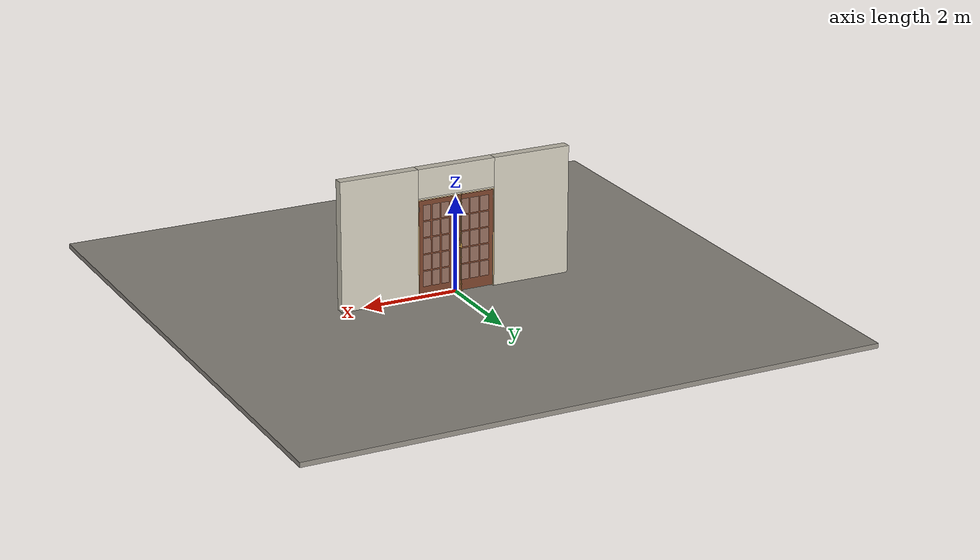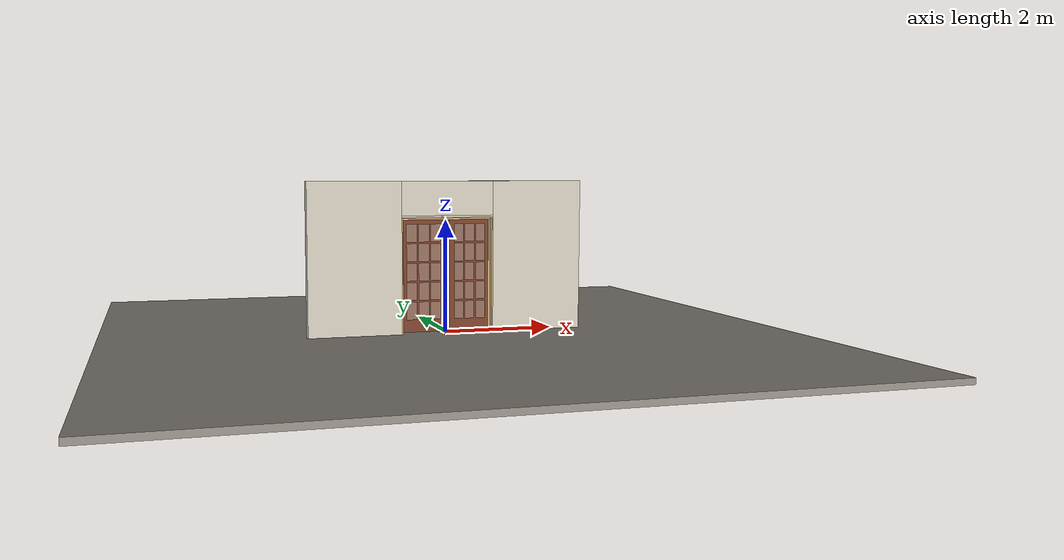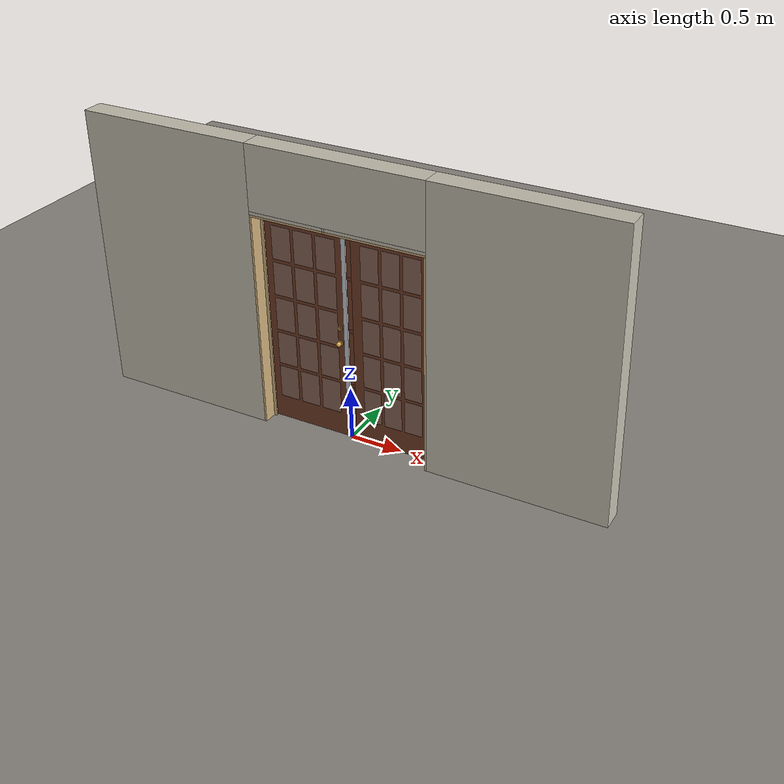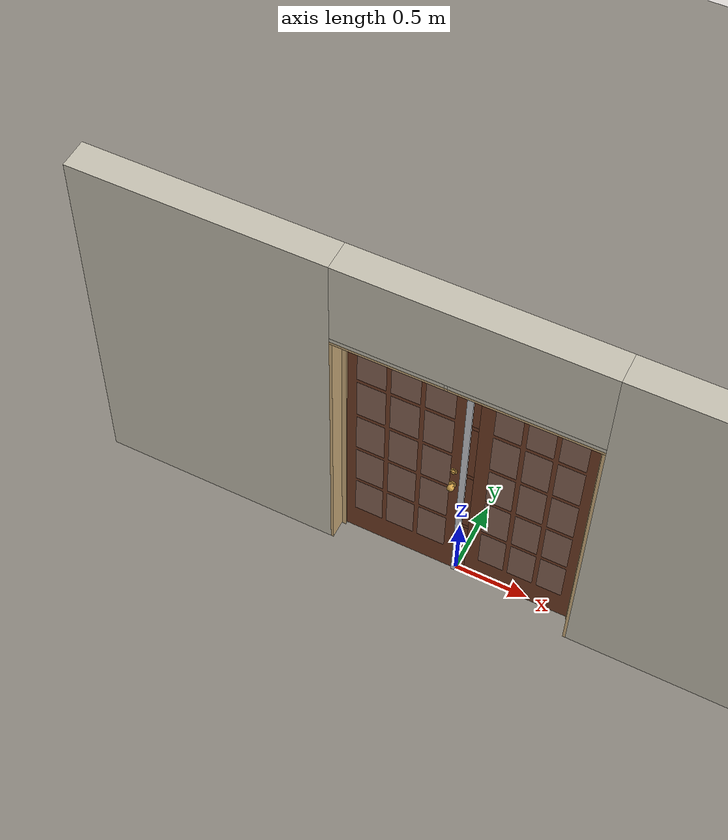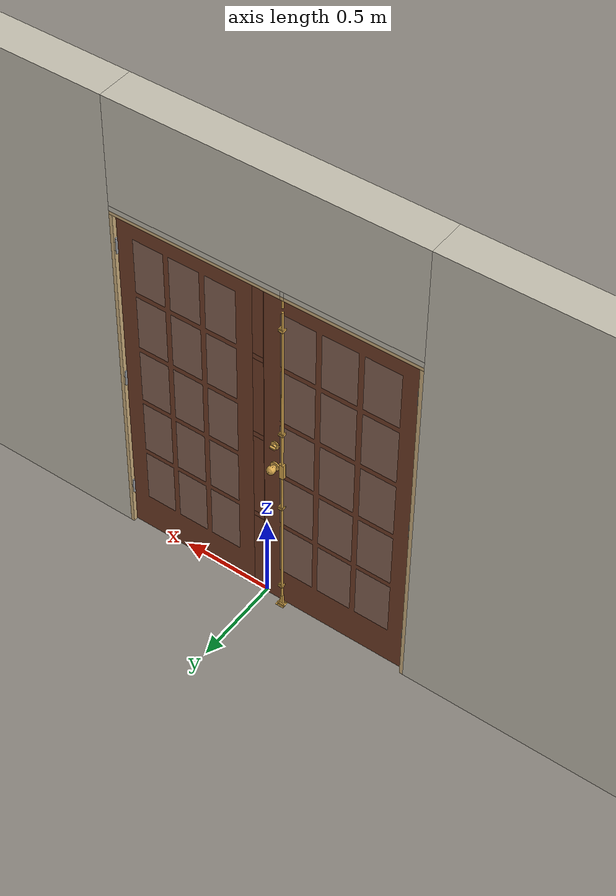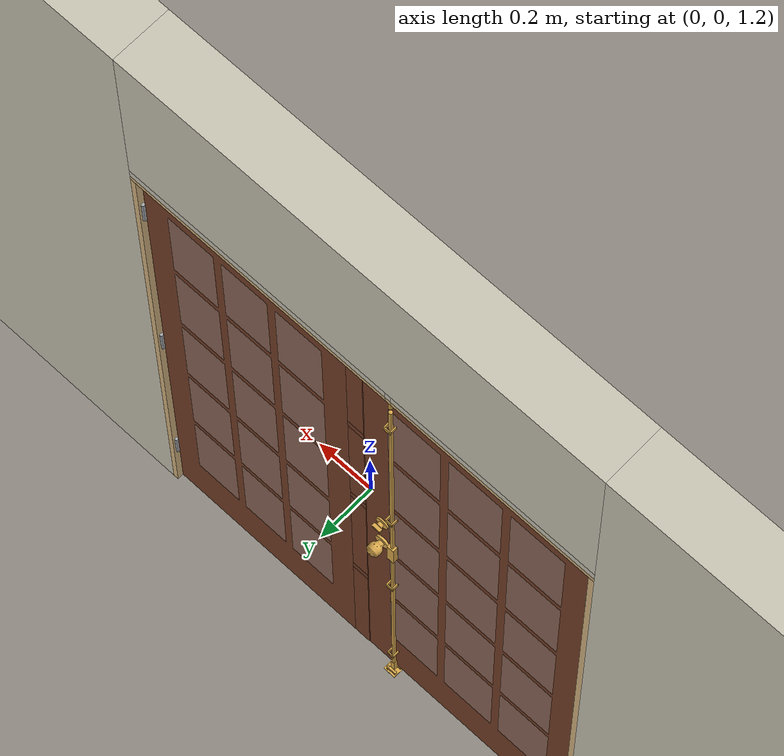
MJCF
<?xml version="1.0" ?>
<mujoco model="db0846_swing_double_full">
  <compiler angle="radian" meshdir="../../hardware" texturedir="../../textures" autolimits="true" inertiafromgeom="false"/>
  <option timestep="0.002" integrator="implicitfast" cone="elliptic" impratio="10" noslip_iterations="3">
    <flag multiccd="enable"/>
  </option>
  <size memory="16M"/>
  <default>
    <geom condim="4" solref="0.005 1" solimp="0.95 0.99 0.001"/>
    <joint solreflimit="0.005 1" solimplimit="0.95 0.99 0.001"/>
    <tendon solreflimit="0.005 1"/>
    <equality solref="0.002 1"/>
  </default>
  <visual>
    <headlight ambient="0.4 0.4 0.4" diffuse="0.7 0.7 0.7" specular="0.2 0.2 0.2"/>
    <quality shadowsize="4096"/>
    <map znear="0.01" zfar="60"/>
  </visual>
  <asset>
    <mesh name="cyl_face_e9e5036966" file="cyl_face_e9e5036966.obj"/>
    <mesh name="hinge_2af0f4d6ca" file="hinge_2af0f4d6ca.obj"/>
    <mesh name="hinge_jamb_c0c0a62ada" file="hinge_jamb_c0c0a62ada.obj"/>
    <mesh name="knob_9525440cc3" file="knob_9525440cc3.obj"/>
    <mesh name="thumbturn_eb5c9899a3" file="thumbturn_eb5c9899a3.obj"/>
    <material name="mat_floor" rgba="0.55 0.53 0.5 1" specular="0.2" shininess="0.15" reflectance="0"/>
    <material name="mat_wall" rgba="0.78 0.76 0.7 1" specular="0.2" shininess="0.1" reflectance="0"/>
    <material name="mat_leaf_a" rgba="0.45 0.24 0.15 1" specular="0.2" shininess="0.55" reflectance="0"/>
    <material name="mat_glass" rgba="0.85 0.92 0.95 0.25" specular="0.2" shininess="0.95" reflectance="0.1"/>
    <material name="mat_hinge" rgba="0.65 0.66 0.68 1" specular="0.74" shininess="0.5" reflectance="0.36"/>
    <material name="mat_op_brass" rgba="0.85 0.66 0.3 1" specular="0.8" shininess="0.75" reflectance="0.4"/>
    <material name="mat_trim" rgba="0.85 0.66 0.3 1" specular="0.8" shininess="0.75" reflectance="0.4"/>
    <material name="mat_deadbolt" rgba="0.85 0.66 0.3 1" specular="0.8" shininess="0.75" reflectance="0.4"/>
    <material name="mat_leaf_b" rgba="0.45 0.24 0.15 1" specular="0.2" shininess="0.55" reflectance="0"/>
    <material name="mat_frame" rgba="0.82 0.7 0.5 1" specular="0.2" shininess="0.45" reflectance="0"/>
    <material name="mat_astragal" rgba="0.8 0.81 0.83 1" specular="0.8" shininess="0.6" reflectance="0.4"/>
    <texture name="skybox" type="skybox" builtin="gradient" rgb1="0.6 0.7 0.85" rgb2="0.9 0.92 0.95" width="256" height="256"/>
  </asset>
  <worldbody>
    <light name="sun" pos="1.5 -2.5 4" dir="-0.3 0.5 -0.8" directional="true" diffuse="0.8 0.8 0.8" specular="0.3 0.3 0.3" castshadow="true"/>
    <light name="fill" pos="-1.5 2.5 3" dir="0.3 -0.5 -0.7" directional="true" diffuse="0.35 0.35 0.4" castshadow="false"/>
    <camera name="robot_view" pos="0 -2.600187 1.734312" xyaxes="1 0 0 0 0.26963 0.962964" fovy="52"/>
    <camera name="far_view" pos="0 2.484187 1.734312" xyaxes="-1 0 0 0 -0.26963 0.962964" fovy="52"/>
    <camera name="iso" pos="-1.932062 -2.193437 2.141063" xyaxes="0.741536 -0.670913 0 0.242917 0.268487 0.932151" fovy="46"/>
    <camera name="detail_handle" pos="0.1135 -0.857 1.245" xyaxes="0.97561 0.219512 0 -0.070934 0.315262 0.94635" fovy="38"/>
    <geom name="floor" type="box" size="6 6 0.05" pos="0 0 -0.05" material="mat_floor" group="0" contype="1" conaffinity="1" friction="0.8 0.005 0.0001" density="2400"/>
    <geom name="wall_left" type="box" size="0.83175 0.1 1.35" pos="-1.66825 -0.058 1.35" material="mat_wall" group="0" contype="1" conaffinity="1" friction="0.6 0.005 0.0001" density="800"/>
    <geom name="wall_right" type="box" size="0.83175 0.1 1.35" pos="1.66825 -0.058 1.35" material="mat_wall" group="0" contype="1" conaffinity="1" friction="0.6 0.005 0.0001" density="800"/>
    <geom name="wall_header" type="box" size="0.8365 0.1 0.303" pos="0 -0.058 2.397" material="mat_wall" group="0" contype="1" conaffinity="1" friction="0.6 0.005 0.0001" density="800"/>
    <geom name="hinge_0_jamb" type="mesh" mesh="hinge_jamb_c0c0a62ada" pos="-0.8145 0.029 0.266" quat="0 1 0 0" material="mat_hinge" group="1" contype="0" conaffinity="0" density="7850"/>
    <geom name="hinge_1_jamb" type="mesh" mesh="hinge_jamb_c0c0a62ada" pos="-0.8145 0.029 1.0285" quat="0 1 0 0" material="mat_hinge" group="1" contype="0" conaffinity="0" density="7850"/>
    <geom name="hinge_2_jamb" type="mesh" mesh="hinge_jamb_c0c0a62ada" pos="-0.8145 0.029 1.861" quat="0 1 0 0" material="mat_hinge" group="1" contype="0" conaffinity="0" density="7850"/>
    <geom name="leaf_a_cremone_floor_strike_plate" type="box" size="0.023 0.023 0.00075" pos="-0.1115 0.031 0.00075" material="mat_op_brass" group="0" contype="1" conaffinity="1" friction="0.6 0.005 0.0001" density="7850"/>
    <geom name="leaf_a_cremone_floor_strike_p" type="box" size="0.019 0.004 0.00575" pos="-0.1115 0.043 0.00725" material="mat_op_brass" group="0" contype="1" conaffinity="1" friction="0.6 0.005 0.0001" density="7850"/>
    <geom name="leaf_a_cremone_floor_strike_n" type="box" size="0.019 0.004 0.00575" pos="-0.1115 0.019 0.00725" material="mat_op_brass" group="0" contype="1" conaffinity="1" friction="0.6 0.005 0.0001" density="7850"/>
    <geom name="leaf_a_cremone_floor_strike_e" type="box" size="0.004 0.019 0.00575" pos="-0.0995 0.031 0.00725" material="mat_op_brass" group="0" contype="1" conaffinity="1" friction="0.6 0.005 0.0001" density="7850"/>
    <geom name="hinge_0_jamb_2" type="mesh" mesh="hinge_jamb_c0c0a62ada" pos="0.8145 0.029 0.259" quat="0 0 0 1" material="mat_hinge" group="1" contype="0" conaffinity="0" density="7850"/>
    <geom name="hinge_1_jamb_2" type="mesh" mesh="hinge_jamb_c0c0a62ada" pos="0.8145 0.029 1.025" quat="0 0 0 1" material="mat_hinge" group="1" contype="0" conaffinity="0" density="7850"/>
    <geom name="hinge_2_jamb_2" type="mesh" mesh="hinge_jamb_c0c0a62ada" pos="0.8145 0.029 1.861" quat="0 0 0 1" material="mat_hinge" group="1" contype="0" conaffinity="0" density="7850"/>
    <geom name="jamb_l" type="box" size="0.0095 0.1 1.0225" pos="-0.827 -0.058 1.0225" material="mat_frame" group="0" contype="1" conaffinity="1" friction="0.6 0.005 0.0001" density="300"/>
    <geom name="jamb_r" type="box" size="0.0095 0.1 1.0225" pos="0.827 -0.058 1.0225" material="mat_frame" group="0" contype="1" conaffinity="1" friction="0.6 0.005 0.0001" density="300"/>
    <geom name="jamb_head_pwall_-111_n" type="box" size="0.01 0.09075 0.0095" pos="-0.1115 -0.06725 2.0545" material="mat_frame" group="0" contype="1" conaffinity="1" friction="0.6 0.005 0.0001" density="300"/>
    <geom name="jamb_head_pwall_-111_p" type="box" size="0.01 0.00175 0.0095" pos="-0.1115 0.04025 2.0545" material="mat_frame" group="0" contype="1" conaffinity="1" friction="0.6 0.005 0.0001" density="300"/>
    <geom name="jamb_head_0" type="box" size="0.3575 0.1 0.0095" pos="-0.479 -0.058 2.0545" material="mat_frame" group="0" contype="1" conaffinity="1" friction="0.6 0.005 0.0001" density="300"/>
    <geom name="jamb_head_1" type="box" size="0.469 0.1 0.0095" pos="0.3675 -0.058 2.0545" material="mat_frame" group="0" contype="1" conaffinity="1" friction="0.6 0.005 0.0001" density="300"/>
    <geom name="head_stud_pwall_-111_n" type="box" size="0.01 0.09075 0.015" pos="-0.1115 -0.06725 2.079" material="mat_wall" group="0" contype="1" conaffinity="1" friction="0.6 0.005 0.0001" density="500"/>
    <geom name="head_stud_pwall_-111_p" type="box" size="0.01 0.00175 0.015" pos="-0.1115 0.04025 2.079" material="mat_wall" group="0" contype="1" conaffinity="1" friction="0.6 0.005 0.0001" density="500"/>
    <geom name="head_stud_pback_-111" type="box" size="0.01 0.0075 0.0115" pos="-0.1115 0.031 2.0825" material="mat_wall" group="0" contype="1" conaffinity="1" friction="0.6 0.005 0.0001" density="500"/>
    <geom name="head_stud_0" type="box" size="0.3575 0.1 0.015" pos="-0.479 -0.058 2.079" material="mat_wall" group="0" contype="1" conaffinity="1" friction="0.6 0.005 0.0001" density="500"/>
    <geom name="head_stud_1" type="box" size="0.469 0.1 0.015" pos="0.3675 -0.058 2.079" material="mat_wall" group="0" contype="1" conaffinity="1" friction="0.6 0.005 0.0001" density="500"/>
    <geom name="stop_l" type="box" size="0.015 0.006 1.0225" pos="-0.8025 -0.0285 1.0225" material="mat_frame" group="0" contype="1" conaffinity="1" friction="0.6 0.005 0.0001" density="300"/>
    <geom name="stop_r" type="box" size="0.015 0.006 1.0225" pos="0.8025 -0.0285 1.0225" material="mat_frame" group="0" contype="1" conaffinity="1" friction="0.6 0.005 0.0001" density="300"/>
    <geom name="stop_head" type="box" size="0.8175 0.006 0.015" pos="0 -0.0285 2.03" material="mat_frame" group="0" contype="1" conaffinity="1" friction="0.6 0.005 0.0001" density="300"/>
    <site name="approach_point" pos="0 -1.5 0" quat="1 0 0 0" size="0.05" rgba="0.2 0.9 0.2 0.5" group="4"/>
    <site name="goal_point" pos="0 1.5 0" quat="1 0 0 0" size="0.05" rgba="0.2 0.9 0.2 0.5" group="4"/>
    <site name="door_plane_center" pos="0 0 1.0225" quat="1 0 0 0" size="0.02" rgba="0.2 0.9 0.2 0.5" group="4"/>
    <site name="approach_point_2" pos="0 -1.5 0" quat="1 0 0 0" size="0.05" rgba="0.2 0.9 0.2 0.5" group="4"/>
    <site name="goal_point_2" pos="0 1.5 0" quat="1 0 0 0" size="0.05" rgba="0.2 0.9 0.2 0.5" group="4"/>
    <site name="door_plane_center_2" pos="0 0 1.0225" quat="1 0 0 0" size="0.02" rgba="0.2 0.9 0.2 0.5" group="4"/>
    <site name="approach_point_3" pos="0 -1.5 0" quat="1 0 0 0" size="0.05" rgba="0.2 0.9 0.2 0.5" group="4"/>
    <site name="goal_point_3" pos="0 1.5 0" quat="1 0 0 0" size="0.05" rgba="0.2 0.9 0.2 0.5" group="4"/>
    <site name="door_plane_center_3" pos="0 0 1.0225" quat="1 0 0 0" size="0.02" rgba="0.2 0.9 0.2 0.5" group="4"/>
    <body name="leaf_a" pos="-0.8175 0 0">
      <inertial pos="0.43634 0.003155 1.026833" mass="35.235615" quat="-0.498258 0.503182 -0.496683 -0.501849" diaginertia="2.177072154 11.810808359 13.971434069"/>
      <joint name="leaf_a_hinge" type="hinge" axis="0 0 1" pos="0.003 0.029 0" limited="true" range="0 1.919862" solreflimit="0.02 1" damping="0.210326" frictionloss="7.292966" armature="0.02"/>
      <geom name="leaf_a_slab" type="box" size="0.4065 0.022 1.0125" pos="0.4095 0 1.0285" material="mat_leaf_a" group="0" contype="1" conaffinity="1" friction="0.35 0.005 0.0001" density="1"/>
      <geom name="leaf_a_glass_0" type="box" size="0.0955 0.0228 0.1581" pos="0.1885 0 0.39685" material="mat_glass" group="1" contype="0" conaffinity="0" density="1"/>
      <geom name="leaf_a_glass_1" type="box" size="0.0955 0.0228 0.1581" pos="0.4095 0 0.39685" material="mat_glass" group="1" contype="0" conaffinity="0" density="1"/>
      <geom name="leaf_a_glass_2" type="box" size="0.0955 0.0228 0.1581" pos="0.6305 0 0.39685" material="mat_glass" group="1" contype="0" conaffinity="0" density="1"/>
      <geom name="leaf_a_glass_3" type="box" size="0.0955 0.0228 0.1581" pos="0.1885 0 0.74305" material="mat_glass" group="1" contype="0" conaffinity="0" density="1"/>
      <geom name="leaf_a_glass_4" type="box" size="0.0955 0.0228 0.1581" pos="0.4095 0 0.74305" material="mat_glass" group="1" contype="0" conaffinity="0" density="1"/>
      <geom name="leaf_a_glass_5" type="box" size="0.0955 0.0228 0.1581" pos="0.6305 0 0.74305" material="mat_glass" group="1" contype="0" conaffinity="0" density="1"/>
      <geom name="leaf_a_glass_6" type="box" size="0.0955 0.0228 0.1581" pos="0.1885 0 1.08925" material="mat_glass" group="1" contype="0" conaffinity="0" density="1"/>
      <geom name="leaf_a_glass_7" type="box" size="0.0955 0.0228 0.1581" pos="0.4095 0 1.08925" material="mat_glass" group="1" contype="0" conaffinity="0" density="1"/>
      <geom name="leaf_a_glass_8" type="box" size="0.0955 0.0228 0.1581" pos="0.6305 0 1.08925" material="mat_glass" group="1" contype="0" conaffinity="0" density="1"/>
      <geom name="leaf_a_glass_9" type="box" size="0.0955 0.0228 0.1581" pos="0.1885 0 1.43545" material="mat_glass" group="1" contype="0" conaffinity="0" density="1"/>
      <geom name="leaf_a_glass_10" type="box" size="0.0955 0.0228 0.1581" pos="0.4095 0 1.43545" material="mat_glass" group="1" contype="0" conaffinity="0" density="1"/>
      <geom name="leaf_a_glass_11" type="box" size="0.0955 0.0228 0.1581" pos="0.6305 0 1.43545" material="mat_glass" group="1" contype="0" conaffinity="0" density="1"/>
      <geom name="leaf_a_glass_12" type="box" size="0.0955 0.0228 0.1581" pos="0.1885 0 1.78165" material="mat_glass" group="1" contype="0" conaffinity="0" density="1"/>
      <geom name="leaf_a_glass_13" type="box" size="0.0955 0.0228 0.1581" pos="0.4095 0 1.78165" material="mat_glass" group="1" contype="0" conaffinity="0" density="1"/>
      <geom name="leaf_a_glass_14" type="box" size="0.0955 0.0228 0.1581" pos="0.6305 0 1.78165" material="mat_glass" group="1" contype="0" conaffinity="0" density="1"/>
      <geom name="hinge_0" type="mesh" mesh="hinge_2af0f4d6ca" pos="0.003 0.029 0.266" quat="0 1 0 0" material="mat_hinge" group="1" contype="0" conaffinity="0" density="7850"/>
      <geom name="hinge_1" type="mesh" mesh="hinge_2af0f4d6ca" pos="0.003 0.029 1.0285" quat="0 1 0 0" material="mat_hinge" group="1" contype="0" conaffinity="0" density="7850"/>
      <geom name="hinge_2" type="mesh" mesh="hinge_2af0f4d6ca" pos="0.003 0.029 1.861" quat="0 1 0 0" material="mat_hinge" group="1" contype="0" conaffinity="0" density="7850"/>
      <geom name="leaf_a_cremone_rod_up" type="cylinder" size="0.006 0.4805" pos="0.706 0.031 1.4855" material="mat_op_brass" group="1" contype="0" conaffinity="0" density="7850"/>
      <geom name="leaf_a_cremone_rod_down" type="cylinder" size="0.006 0.4395" pos="0.706 0.031 0.4855" material="mat_op_brass" group="1" contype="0" conaffinity="0" density="7850"/>
      <geom name="leaf_a_cremone_gearbox" type="box" size="0.012 0.01 0.045" pos="0.706 0.031 0.965" material="mat_op_brass" group="1" contype="0" conaffinity="0" density="7850"/>
      <geom name="leaf_a_cremone_guide_0_leg_n" type="box" size="0.007 0.002 0.0125" pos="0.695 0.0345 1.215" quat="-0.5 0.5 0.5 0.5" material="mat_op_brass" group="1" contype="0" conaffinity="0" density="7800"/>
      <geom name="leaf_a_cremone_guide_0_leg_p" type="box" size="0.007 0.002 0.0125" pos="0.717 0.0345 1.215" quat="-0.5 0.5 0.5 0.5" material="mat_op_brass" group="1" contype="0" conaffinity="0" density="7800"/>
      <geom name="leaf_a_cremone_guide_0_bridge" type="box" size="0.007 0.013 0.002" pos="0.706 0.045 1.215" quat="-0.5 0.5 0.5 0.5" material="mat_op_brass" group="1" contype="0" conaffinity="0" density="7800"/>
      <geom name="leaf_a_cremone_guide_1_leg_n" type="box" size="0.007 0.002 0.0125" pos="0.695 0.0345 1.866" quat="-0.5 0.5 0.5 0.5" material="mat_op_brass" group="1" contype="0" conaffinity="0" density="7800"/>
      <geom name="leaf_a_cremone_guide_1_leg_p" type="box" size="0.007 0.002 0.0125" pos="0.717 0.0345 1.866" quat="-0.5 0.5 0.5 0.5" material="mat_op_brass" group="1" contype="0" conaffinity="0" density="7800"/>
      <geom name="leaf_a_cremone_guide_1_bridge" type="box" size="0.007 0.013 0.002" pos="0.706 0.045 1.866" quat="-0.5 0.5 0.5 0.5" material="mat_op_brass" group="1" contype="0" conaffinity="0" density="7800"/>
      <geom name="leaf_a_cremone_guide_2_leg_n" type="box" size="0.007 0.002 0.0125" pos="0.695 0.0345 0.715" quat="-0.5 0.5 0.5 0.5" material="mat_op_brass" group="1" contype="0" conaffinity="0" density="7800"/>
      <geom name="leaf_a_cremone_guide_2_leg_p" type="box" size="0.007 0.002 0.0125" pos="0.717 0.0345 0.715" quat="-0.5 0.5 0.5 0.5" material="mat_op_brass" group="1" contype="0" conaffinity="0" density="7800"/>
      <geom name="leaf_a_cremone_guide_2_bridge" type="box" size="0.007 0.013 0.002" pos="0.706 0.045 0.715" quat="-0.5 0.5 0.5 0.5" material="mat_op_brass" group="1" contype="0" conaffinity="0" density="7800"/>
      <geom name="leaf_a_cremone_guide_3_leg_n" type="box" size="0.007 0.002 0.0125" pos="0.695 0.0345 0.146" quat="-0.5 0.5 0.5 0.5" material="mat_op_brass" group="1" contype="0" conaffinity="0" density="7800"/>
      <geom name="leaf_a_cremone_guide_3_leg_p" type="box" size="0.007 0.002 0.0125" pos="0.717 0.0345 0.146" quat="-0.5 0.5 0.5 0.5" material="mat_op_brass" group="1" contype="0" conaffinity="0" density="7800"/>
      <geom name="leaf_a_cremone_guide_3_bridge" type="box" size="0.007 0.013 0.002" pos="0.706 0.045 0.146" quat="-0.5 0.5 0.5 0.5" material="mat_op_brass" group="1" contype="0" conaffinity="0" density="7800"/>
      <geom name="leaf_a_deadbolt_faceplate" type="box" size="0.0006 0.014 0.0245" pos="0.8154 0 1.105" material="mat_deadbolt" group="1" contype="0" conaffinity="0" density="8500"/>
      <geom name="leaf_a_deadbolt_cylinder_face" type="mesh" mesh="cyl_face_e9e5036966" pos="0.751 -0.022 1.105" quat="0.707107 0.707107 0 0" material="mat_deadbolt" group="1" contype="0" conaffinity="0" density="7100"/>
      <geom name="leaf_a_multipoint_upper_faceplate" type="box" size="0.0006 0.014 0.0245" pos="0.8154 0 1.605" material="mat_deadbolt" group="1" contype="0" conaffinity="0" density="8500"/>
      <geom name="leaf_a_multipoint_lower_faceplate" type="box" size="0.0006 0.014 0.0245" pos="0.8154 0 0.555" material="mat_deadbolt" group="1" contype="0" conaffinity="0" density="8500"/>
      <geom name="leaf_a_multipoint_strip" type="box" size="0.0004 0.01 0.9925" pos="0.8156 0 1.0285" material="mat_deadbolt" group="1" contype="0" conaffinity="0" density="8500"/>
      <site name="leaf_a_edge_mid" pos="0.816 0 1.0125" quat="1 0 0 0" size="0.02" rgba="0.2 0.9 0.2 0.5" group="4"/>
      <body name="leaf_a_handle" pos="0.751 0 0.965">
        <inertial pos="0 0 0" mass="0.732315" quat="0.5 0.5 0.5 0.5" diaginertia="0.000141246 0.002063101 0.002063101"/>
        <joint name="leaf_a_handle_hinge" type="hinge" axis="0 -1 0" limited="true" range="0 1.5708" damping="0.5" frictionloss="0.4" armature="0.01"/>
        <geom name="leaf_a_handle_spindle" type="cylinder" size="0.006 0.03" pos="0 0 0" quat="0.707107 -0.707107 0 0" material="mat_op_brass" group="1" contype="0" conaffinity="0" density="7850"/>
        <geom name="leaf_a_handle_cremone_knob_n" type="mesh" mesh="knob_9525440cc3" pos="0 -0.022 0" quat="0.707107 0.707107 0 0" material="mat_op_brass" group="1" contype="0" conaffinity="0" density="3000"/>
        <geom name="leaf_a_handle_cremone_col_n" type="sphere" size="0.022" pos="0 -0.057 0" material="mat_op_brass" group="0" contype="1" conaffinity="1" friction="0.6 0.005 0.0001" density="3000"/>
        <geom name="leaf_a_handle_cremone_knob_p" type="mesh" mesh="knob_9525440cc3" pos="0 0.022 0" quat="-0.707107 0.707107 0 0" material="mat_op_brass" group="1" contype="0" conaffinity="0" density="3000"/>
        <geom name="leaf_a_handle_cremone_col_p" type="sphere" size="0.022" pos="0 0.057 0" material="mat_op_brass" group="0" contype="1" conaffinity="1" friction="0.6 0.005 0.0001" density="3000"/>
        <site name="leaf_a_handle_grip_n" pos="0 -0.057 0" quat="1 0 0 0" size="0.012" rgba="0.2 0.9 0.2 0.5" group="4"/>
        <site name="leaf_a_handle_grip_p" pos="0 0.057 0" quat="1 0 0 0" size="0.012" rgba="0.2 0.9 0.2 0.5" group="4"/>
      </body>
      <body name="leaf_a_cremone_top_bolt" pos="0.706 0.031 2.041">
        <inertial pos="0 0 -0.016" mass="0.060371" quat="0.707107 0 0.707107 0" diaginertia="0.000001061 0.000023913 0.000023913"/>
        <joint name="leaf_a_cremone_top_bolt_slide" type="slide" axis="0 0 -1" limited="true" range="0 0.02" damping="2" frictionloss="0.5" armature="0.1"/>
        <geom name="leaf_a_cremone_top_bolt_geom" type="capsule" size="0.006 0.03" pos="0 0 -0.016" material="mat_op_brass" group="0" contype="1" conaffinity="1" friction="0.4 0.005 0.0001" density="7850"/>
      </body>
      <body name="leaf_a_cremone_bottom_bolt" pos="0.706 0.031 0.03">
        <inertial pos="0 0 0.004" mass="0.092316" quat="0.707107 0 0.707107 0" diaginertia="0.000003016 0.000029203 0.000029203"/>
        <joint name="leaf_a_cremone_bottom_bolt_slide" type="slide" axis="0 0 1" limited="true" range="0 0.026" damping="2" frictionloss="0.5" armature="0.1"/>
        <geom name="leaf_a_cremone_bottom_bolt_geom" type="box" size="0.007 0.007 0.03" pos="0 0 0.004" material="mat_op_brass" group="0" contype="1" conaffinity="1" friction="0.6 0.005 0.0001" density="7850"/>
      </body>
      <body name="leaf_a_deadbolt" pos="0.816 0 1.105">
        <inertial pos="-0.025 0 0" mass="0.17" quat="0 0 0.707107 0.707107" diaginertia="0.000012481 0.000039043 0.000044271"/>
        <joint name="leaf_a_deadbolt_slide" type="slide" axis="-1 0 0" limited="true" range="0 0.02" damping="5" frictionloss="1.5" armature="0.1" ref="0.02"/>
        <geom name="leaf_a_deadbolt_box" type="box" size="0.025 0.008 0.0125" pos="-0.025 0 0" material="mat_deadbolt" group="0" contype="1" conaffinity="1" friction="0.3 0.005 0.0001" density="8500"/>
      </body>
      <body name="leaf_a_deadbolt_thumbturn" pos="0.751 0.022 1.105">
        <inertial pos="0 0.012928 0" mass="0.178946" quat="0.707107 -0.000001 -0.000001 0.707107" diaginertia="0.000026045 0.000026215 0.000032438"/>
        <joint name="leaf_a_deadbolt_thumbturn_hinge" type="hinge" axis="0 -1 0" limited="true" range="0 1.5708" damping="0.05" frictionloss="0.3" armature="0.005" ref="1.5708"/>
        <geom name="leaf_a_deadbolt_thumbturn_mesh" type="mesh" mesh="thumbturn_eb5c9899a3" pos="0 0 0" quat="-0.499999 0.499999 0.500001 0.500001" material="mat_deadbolt" group="0" contype="1" conaffinity="1" friction="0.6 0.005 0.0001" density="7100"/>
        <geom name="leaf_a_deadbolt_thumbturn_col" type="box" size="0.006 0.012 0.016" pos="0 0.02 0" quat="0.707105 0 -0.707108 0" material="mat_deadbolt" group="3" contype="1" conaffinity="1" rgba="0.8 0.3 0.3 0.25" friction="0.6 0.005 0.0001" density="7100"/>
      </body>
      <body name="leaf_a_multipoint_upper" pos="0.816 0 1.605">
        <inertial pos="-0.025 0 0" mass="0.17" quat="0 0 0.707107 0.707107" diaginertia="0.000012481 0.000039043 0.000044271"/>
        <joint name="leaf_a_multipoint_upper_slide" type="slide" axis="-1 0 0" limited="true" range="0 0.02" damping="5" frictionloss="1.5" armature="0.1" ref="0.02"/>
        <geom name="leaf_a_multipoint_upper_box" type="box" size="0.025 0.008 0.0125" pos="-0.025 0 0" material="mat_deadbolt" group="0" contype="1" conaffinity="1" friction="0.3 0.005 0.0001" density="8500"/>
      </body>
      <body name="leaf_a_multipoint_lower" pos="0.816 0 0.555">
        <inertial pos="-0.025 0 0" mass="0.17" quat="0 0 0.707107 0.707107" diaginertia="0.000012481 0.000039043 0.000044271"/>
        <joint name="leaf_a_multipoint_lower_slide" type="slide" axis="-1 0 0" limited="true" range="0 0.02" damping="5" frictionloss="1.5" armature="0.1" ref="0.02"/>
        <geom name="leaf_a_multipoint_lower_box" type="box" size="0.025 0.008 0.0125" pos="-0.025 0 0" material="mat_deadbolt" group="0" contype="1" conaffinity="1" friction="0.3 0.005 0.0001" density="8500"/>
      </body>
    </body>
    <body name="leaf_b" pos="0.8175 0 0">
      <inertial pos="-0.43736 -0.004137 1.024228" mass="34.301641" quat="0.493822 0.507387 -0.492466 0.506138" diaginertia="2.326605776 11.795420204 14.107381367"/>
      <joint name="leaf_b_hinge" type="hinge" axis="0 0 -1" pos="-0.003 0.029 0" limited="true" range="0 0.001" solreflimit="0.02 1" damping="0.210326" frictionloss="7.292966" armature="0.02"/>
      <geom name="leaf_b_edge_555_wall_n" type="box" size="0.03 0.00625 0.0155" pos="-0.786 -0.01575 0.555" material="mat_leaf_b" group="0" contype="1" conaffinity="1" friction="0.6 0.005 0.0001" density="1"/>
      <geom name="leaf_b_edge_555_wall_p" type="box" size="0.03 0.00625 0.0155" pos="-0.786 0.01575 0.555" material="mat_leaf_b" group="0" contype="1" conaffinity="1" friction="0.6 0.005 0.0001" density="1"/>
      <geom name="leaf_b_edge_555_back" type="box" size="0.018 0.0095 0.0155" pos="-0.774 0 0.555" material="mat_leaf_b" group="0" contype="1" conaffinity="1" friction="0.6 0.005 0.0001" density="1"/>
      <geom name="leaf_b_edge_1105_wall_n" type="box" size="0.03 0.00625 0.0155" pos="-0.786 -0.01575 1.105" material="mat_leaf_b" group="0" contype="1" conaffinity="1" friction="0.6 0.005 0.0001" density="1"/>
      <geom name="leaf_b_edge_1105_wall_p" type="box" size="0.03 0.00625 0.0155" pos="-0.786 0.01575 1.105" material="mat_leaf_b" group="0" contype="1" conaffinity="1" friction="0.6 0.005 0.0001" density="1"/>
      <geom name="leaf_b_edge_1105_back" type="box" size="0.018 0.0095 0.0155" pos="-0.774 0 1.105" material="mat_leaf_b" group="0" contype="1" conaffinity="1" friction="0.6 0.005 0.0001" density="1"/>
      <geom name="leaf_b_edge_1605_wall_n" type="box" size="0.03 0.00625 0.0155" pos="-0.786 -0.01575 1.605" material="mat_leaf_b" group="0" contype="1" conaffinity="1" friction="0.6 0.005 0.0001" density="1"/>
      <geom name="leaf_b_edge_1605_wall_p" type="box" size="0.03 0.00625 0.0155" pos="-0.786 0.01575 1.605" material="mat_leaf_b" group="0" contype="1" conaffinity="1" friction="0.6 0.005 0.0001" density="1"/>
      <geom name="leaf_b_edge_1605_back" type="box" size="0.018 0.0095 0.0155" pos="-0.774 0 1.605" material="mat_leaf_b" group="0" contype="1" conaffinity="1" friction="0.6 0.005 0.0001" density="1"/>
      <geom name="leaf_b_edge_seg_0" type="box" size="0.03 0.022 0.26525" pos="-0.786 0 0.27425" material="mat_leaf_b" group="0" contype="1" conaffinity="1" friction="0.6 0.005 0.0001" density="1"/>
      <geom name="leaf_b_edge_seg_1" type="box" size="0.03 0.022 0.2595" pos="-0.786 0 0.83" material="mat_leaf_b" group="0" contype="1" conaffinity="1" friction="0.6 0.005 0.0001" density="1"/>
      <geom name="leaf_b_edge_seg_2" type="box" size="0.03 0.022 0.2345" pos="-0.786 0 1.355" material="mat_leaf_b" group="0" contype="1" conaffinity="1" friction="0.6 0.005 0.0001" density="1"/>
      <geom name="leaf_b_edge_seg_3" type="box" size="0.03 0.022 0.21025" pos="-0.786 0 1.83075" material="mat_leaf_b" group="0" contype="1" conaffinity="1" friction="0.6 0.005 0.0001" density="1"/>
      <geom name="leaf_b_slab" type="box" size="0.3765 0.022 1.016" pos="-0.3795 0 1.025" material="mat_leaf_b" group="0" contype="1" conaffinity="1" friction="0.35 0.005 0.0001" density="1"/>
      <geom name="leaf_b_glass_0" type="box" size="0.0855 0.0228 0.158688" pos="-0.1785 0 0.391208" material="mat_glass" group="1" contype="0" conaffinity="0" density="1"/>
      <geom name="leaf_b_glass_1" type="box" size="0.0855 0.0228 0.158688" pos="-0.3795 0 0.391208" material="mat_glass" group="1" contype="0" conaffinity="0" density="1"/>
      <geom name="leaf_b_glass_2" type="box" size="0.0855 0.0228 0.158688" pos="-0.5805 0 0.391208" material="mat_glass" group="1" contype="0" conaffinity="0" density="1"/>
      <geom name="leaf_b_glass_3" type="box" size="0.0855 0.0228 0.158688" pos="-0.1785 0 0.738584" material="mat_glass" group="1" contype="0" conaffinity="0" density="1"/>
      <geom name="leaf_b_glass_4" type="box" size="0.0855 0.0228 0.158688" pos="-0.3795 0 0.738584" material="mat_glass" group="1" contype="0" conaffinity="0" density="1"/>
      <geom name="leaf_b_glass_5" type="box" size="0.0855 0.0228 0.158688" pos="-0.5805 0 0.738584" material="mat_glass" group="1" contype="0" conaffinity="0" density="1"/>
      <geom name="leaf_b_glass_6" type="box" size="0.0855 0.0228 0.158688" pos="-0.1785 0 1.08596" material="mat_glass" group="1" contype="0" conaffinity="0" density="1"/>
      <geom name="leaf_b_glass_7" type="box" size="0.0855 0.0228 0.158688" pos="-0.3795 0 1.08596" material="mat_glass" group="1" contype="0" conaffinity="0" density="1"/>
      <geom name="leaf_b_glass_8" type="box" size="0.0855 0.0228 0.158688" pos="-0.5805 0 1.08596" material="mat_glass" group="1" contype="0" conaffinity="0" density="1"/>
      <geom name="leaf_b_glass_9" type="box" size="0.0855 0.0228 0.158688" pos="-0.1785 0 1.433336" material="mat_glass" group="1" contype="0" conaffinity="0" density="1"/>
      <geom name="leaf_b_glass_10" type="box" size="0.0855 0.0228 0.158688" pos="-0.3795 0 1.433336" material="mat_glass" group="1" contype="0" conaffinity="0" density="1"/>
      <geom name="leaf_b_glass_11" type="box" size="0.0855 0.0228 0.158688" pos="-0.5805 0 1.433336" material="mat_glass" group="1" contype="0" conaffinity="0" density="1"/>
      <geom name="leaf_b_glass_12" type="box" size="0.0855 0.0228 0.158688" pos="-0.1785 0 1.780712" material="mat_glass" group="1" contype="0" conaffinity="0" density="1"/>
      <geom name="leaf_b_glass_13" type="box" size="0.0855 0.0228 0.158688" pos="-0.3795 0 1.780712" material="mat_glass" group="1" contype="0" conaffinity="0" density="1"/>
      <geom name="leaf_b_glass_14" type="box" size="0.0855 0.0228 0.158688" pos="-0.5805 0 1.780712" material="mat_glass" group="1" contype="0" conaffinity="0" density="1"/>
      <geom name="hinge_0_2" type="mesh" mesh="hinge_2af0f4d6ca" pos="-0.003 0.029 0.259" quat="0 0 0 1" material="mat_hinge" group="1" contype="0" conaffinity="0" density="7850"/>
      <geom name="hinge_1_2" type="mesh" mesh="hinge_2af0f4d6ca" pos="-0.003 0.029 1.025" quat="0 0 0 1" material="mat_hinge" group="1" contype="0" conaffinity="0" density="7850"/>
      <geom name="hinge_2_2" type="mesh" mesh="hinge_2af0f4d6ca" pos="-0.003 0.029 1.861" quat="0 0 0 1" material="mat_hinge" group="1" contype="0" conaffinity="0" density="7850"/>
      <geom name="astragal" type="box" size="0.02 0.008 0.996" pos="-0.82 -0.03 1.016" material="mat_astragal" group="0" contype="1" conaffinity="1" friction="0.6 0.005 0.0001" density="2700"/>
      <site name="leaf_b_edge_mid" pos="-0.816 0 1.016" quat="1 0 0 0" size="0.02" rgba="0.2 0.9 0.2 0.5" group="4"/>
    </body>
  </worldbody>
  <equality>
    <joint name="leaf_a_cremone_couple" joint1="leaf_a_cremone_top_bolt_slide" joint2="leaf_a_handle_hinge" polycoef="0 0.012732 0 0 0" active="true"/>
    <joint name="leaf_a_cremone_bottom_couple" joint1="leaf_a_cremone_bottom_bolt_slide" joint2="leaf_a_handle_hinge" polycoef="0 0.016552 0 0 0" active="true"/>
    <joint name="leaf_a_deadbolt_couple" joint1="leaf_a_deadbolt_slide" joint2="leaf_a_deadbolt_thumbturn_hinge" polycoef="0 0.012732 0 0 0" active="true"/>
    <joint name="leaf_a_multipoint_upper_couple" joint1="leaf_a_multipoint_upper_slide" joint2="leaf_a_deadbolt_slide" polycoef="0 1 0 0 0" active="true"/>
    <joint name="leaf_a_multipoint_lower_couple" joint1="leaf_a_multipoint_lower_slide" joint2="leaf_a_deadbolt_slide" polycoef="0 1 0 0 0" active="true"/>
  </equality>
  <contact>
    <exclude body1="leaf_a_deadbolt" body2="leaf_a_deadbolt_thumbturn"/>
  </contact>
  <sensor>
    <jointpos name="leaf_a_hinge_pos" joint="leaf_a_hinge"/>
    <jointvel name="leaf_a_hinge_vel" joint="leaf_a_hinge"/>
    <jointpos name="leaf_a_handle_hinge_pos" joint="leaf_a_handle_hinge"/>
    <jointvel name="leaf_a_handle_hinge_vel" joint="leaf_a_handle_hinge"/>
    <jointpos name="leaf_a_cremone_top_bolt_slide_pos" joint="leaf_a_cremone_top_bolt_slide"/>
    <jointvel name="leaf_a_cremone_top_bolt_slide_vel" joint="leaf_a_cremone_top_bolt_slide"/>
    <jointpos name="leaf_a_cremone_bottom_bolt_slide_pos" joint="leaf_a_cremone_bottom_bolt_slide"/>
    <jointvel name="leaf_a_cremone_bottom_bolt_slide_vel" joint="leaf_a_cremone_bottom_bolt_slide"/>
    <jointpos name="leaf_a_deadbolt_slide_pos" joint="leaf_a_deadbolt_slide"/>
    <jointvel name="leaf_a_deadbolt_slide_vel" joint="leaf_a_deadbolt_slide"/>
    <jointpos name="leaf_a_deadbolt_thumbturn_hinge_pos" joint="leaf_a_deadbolt_thumbturn_hinge"/>
    <jointvel name="leaf_a_deadbolt_thumbturn_hinge_vel" joint="leaf_a_deadbolt_thumbturn_hinge"/>
    <jointpos name="leaf_a_multipoint_upper_slide_pos" joint="leaf_a_multipoint_upper_slide"/>
    <jointvel name="leaf_a_multipoint_upper_slide_vel" joint="leaf_a_multipoint_upper_slide"/>
    <jointpos name="leaf_a_multipoint_lower_slide_pos" joint="leaf_a_multipoint_lower_slide"/>
    <jointvel name="leaf_a_multipoint_lower_slide_vel" joint="leaf_a_multipoint_lower_slide"/>
    <jointpos name="leaf_b_hinge_pos" joint="leaf_b_hinge"/>
    <jointvel name="leaf_b_hinge_vel" joint="leaf_b_hinge"/>
  </sensor>
</mujoco>
